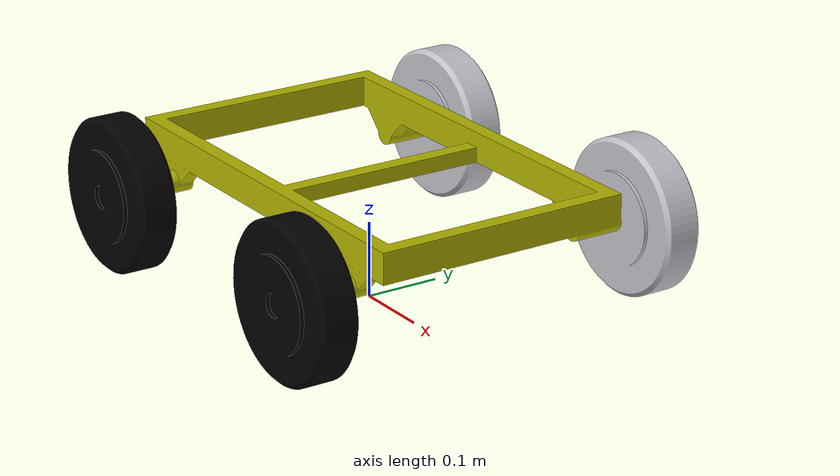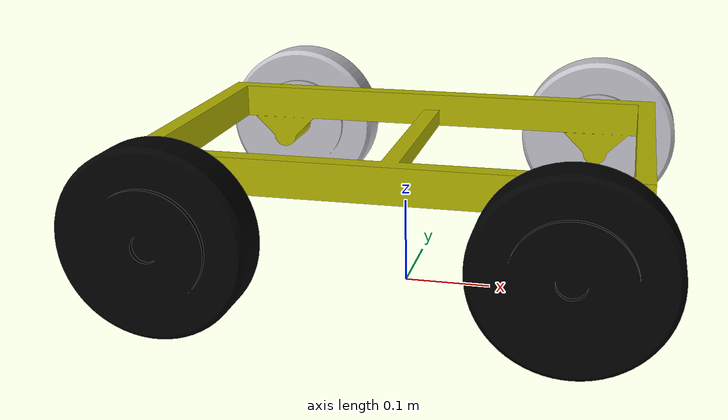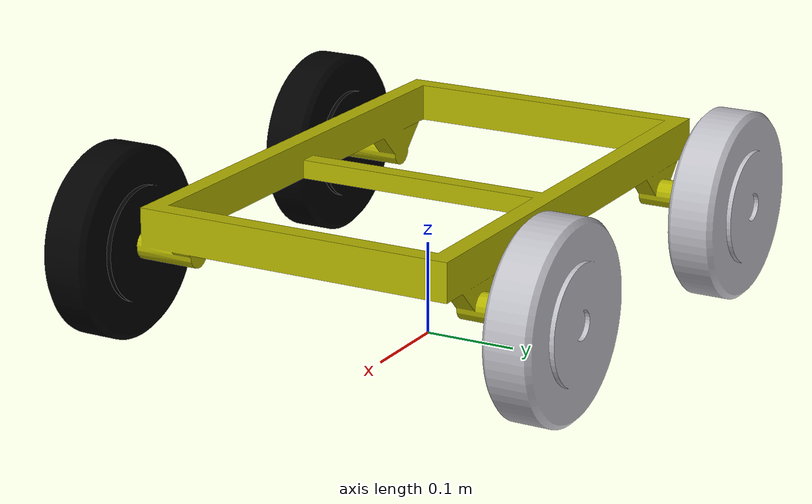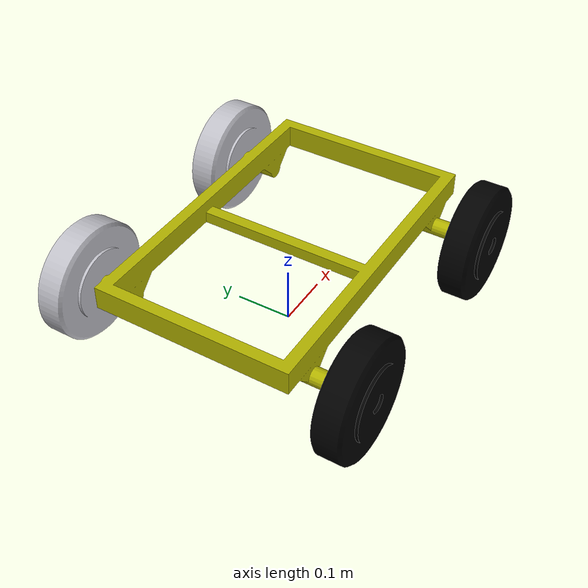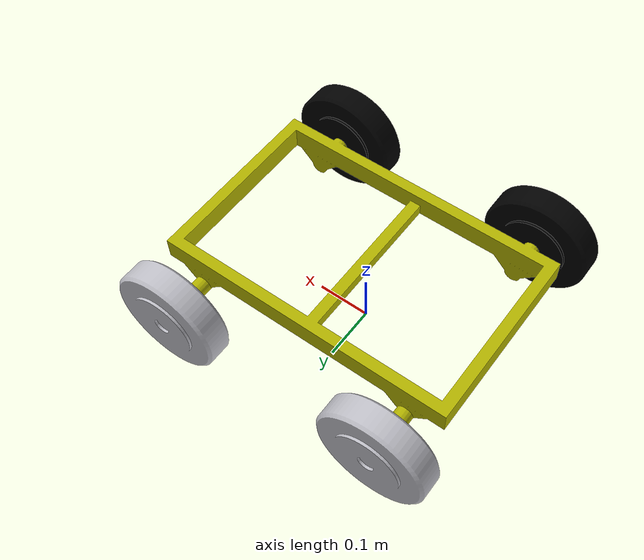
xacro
<?xml version="1.0" ?>
<robot name="my_robot_car" xmlns:xacro="http://www.ros.org/wiki/xacro">

<xacro:include filename="$(find maker_robot)/urdf/materials.xacro" />

<link name="base_link">
        <collision>
          <origin rpy="0 0 0" xyz="0 0 0.0005"/>
          <geometry>
            <box size="0.22 0.22 0.001"/>
          </geometry>
        </collision>
    </link>

  <joint name="base_link_joint" type="fixed">
        <origin xyz="0 0 0.026" rpy="0 0 -1.5708" />
        <parent link="base_link" />
        <child link="base_plate" />
    </joint>

<link name="base_plate">

  <visual>
    <origin rpy="0 0 0" xyz="0 0 0"/>
    <geometry>
      <mesh filename="package://maker_robot/meshes/base_plate.stl" scale="0.001 0.001 0.001"/>
    </geometry>
    <material name="yellow"/>
  </visual>
  <collision>
    <origin rpy="0 0 0" xyz="0 0 0"/>
    <geometry>
      <mesh filename="package://maker_robot/meshes/base_plate.stl" scale="0.001 0.001 0.001"/>
    </geometry>
  </collision>
</link>

<link name="right_rear_wheel">

  <visual>
    <origin rpy="0 0 0" xyz="-0.21 -0.21 -0.1"/>
    <geometry>
      <mesh filename="package://maker_robot/meshes/right_rear_wheel.stl" scale="0.001 0.001 0.001"/>
    </geometry>
    <material name="black"/>
  </visual>
  <collision>
    <origin rpy="0 0 0" xyz="-0.21 -0.21 -0.1"/>
    <geometry>
      <mesh filename="package://maker_robot/meshes/right_rear_wheel.stl" scale="0.001 0.001 0.001"/>
    </geometry>
  </collision>
</link>

<link name="right_front_wheel">

  <visual>
    <origin rpy="0 0 0" xyz="-0.21 0.2 -0.1"/>
    <geometry>
      <mesh filename="package://maker_robot/meshes/right_front_wheel.stl" scale="0.001 0.001 0.001"/>
    </geometry>
    <material name="black"/>
  </visual>
  <collision>
    <origin rpy="0 0 0" xyz="-0.21 0.2 -0.1"/>
    <geometry>
      <mesh filename="package://maker_robot/meshes/right_front_wheel.stl" scale="0.001 0.001 0.001"/>
    </geometry>
  </collision>
</link>

<link name="left_front_wheel">

  <visual>
    <origin rpy="0 0 0" xyz="0.22 0.2 -0.1"/>
    <geometry>
      <mesh filename="package://maker_robot/meshes/left_front_wheel.stl" scale="0.001 0.001 0.001"/>
    </geometry>
    <material name="silver"/>
  </visual>
  <collision>
    <origin rpy="0 0 0" xyz="0.22 0.2 -0.1"/>
    <geometry>
      <mesh filename="package://maker_robot/meshes/left_front_wheel.stl" scale="0.001 0.001 0.001"/>
    </geometry>
  </collision>
</link>

<link name="left_rear_wheel">

  <visual>
    <origin rpy="0 0 0" xyz="0.22 -0.21 -0.1"/>
    <geometry>
      <mesh filename="package://maker_robot/meshes/left_rear_wheel.stl" scale="0.001 0.001 0.001"/>
    </geometry>
    <material name="silver"/>
  </visual>
  <collision>
    <origin rpy="0 0 0" xyz="0.22 -0.21 -0.1"/>
    <geometry>
      <mesh filename="package://maker_robot/meshes/left_rear_wheel.stl" scale="0.001 0.001 0.001"/>
    </geometry>
  </collision>
</link>

<joint name="right_rear_wheel_joint" type="continuous">
  <origin rpy="0 0 0" xyz="0.21 0.21 0.1"/>
  <parent link="base_plate"/>
  <child link="right_rear_wheel"/>
  <axis xyz="-1.0 0.0 0.0"/>
</joint>

<joint name="right_front_wheel_joint" type="continuous">
  <origin rpy="0 0 0" xyz="0.21 -0.2 0.1"/>
  <parent link="base_plate"/>
  <child link="right_front_wheel"/>
  <axis xyz="-1.0 0.0 0.0"/>
</joint>

<joint name="left_front_wheel_joint" type="continuous">
  <origin rpy="0 0 0" xyz="-0.22 -0.2 0.1"/>
  <parent link="base_plate"/>
  <child link="left_front_wheel"/>
  <axis xyz="-1.0 0.0 0.0"/>
</joint>

<joint name="left_rear_wheel_joint" type="continuous">
  <origin rpy="0 0 0" xyz="-0.22 0.21 0.1"/>
  <parent link="base_plate"/>
  <child link="left_rear_wheel"/>
  <axis xyz="-1.0 0.0 0.0"/>
</joint>

</robot>

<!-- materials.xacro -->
<robot name="my_robot_car" xmlns:xacro="http://www.ros.org/wiki/xacro" >

<material name="yellow">
  <color rgba="0.700 0.700 0.000 1.000"/>
</material>
<material name="black">
	    <color rgba="0 0 0 1"/>
</material>
</robot>
